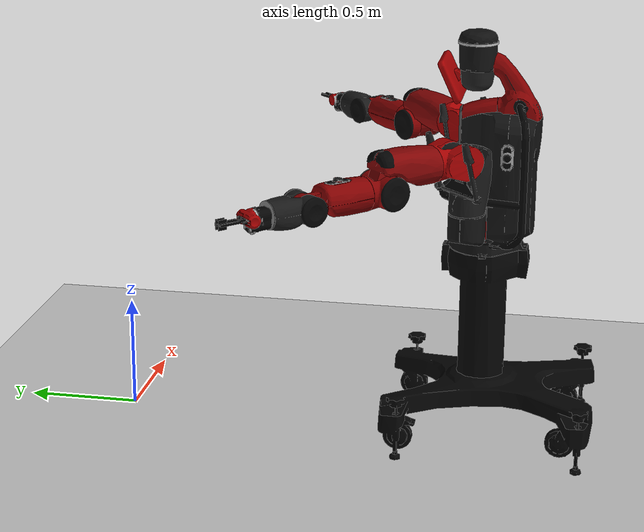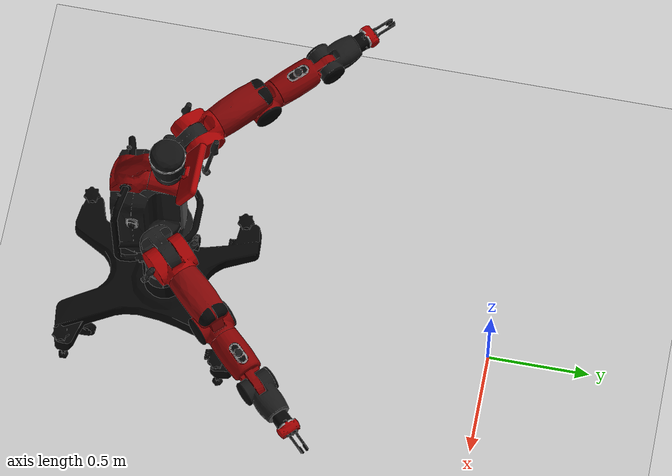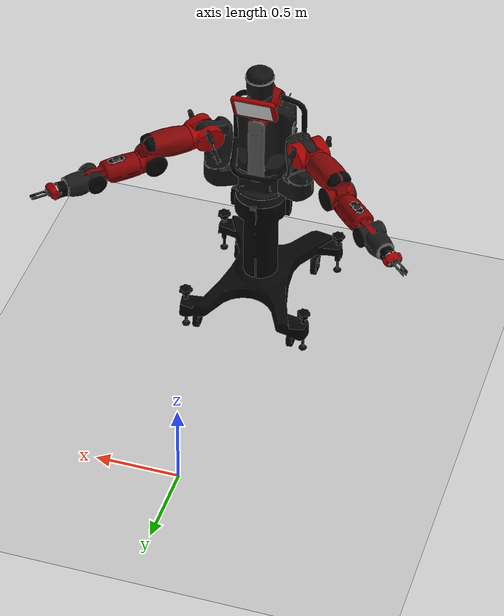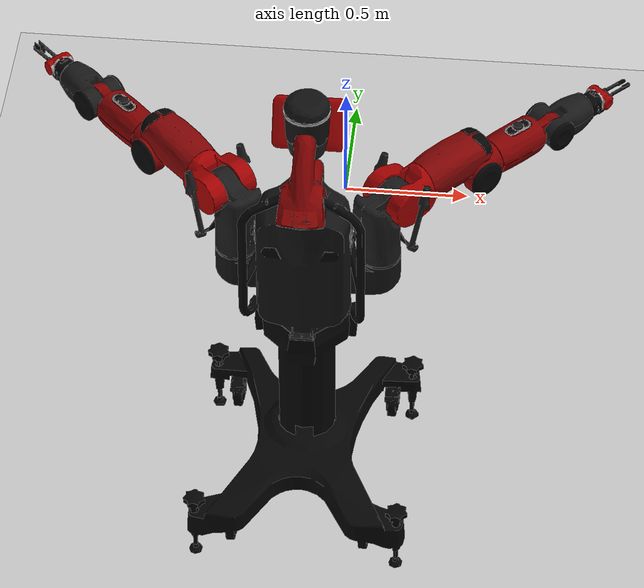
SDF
<sdf version="1.6">
 <world name="default">
  <model name="ground_plane">
   <pose>0.5 -0.5 0 0 -0 0</pose>
   <static>1</static>
   <link name="link">
    <collision name="collision">
     <geometry><plane><normal>0 0 1</normal><size>100 100</size></plane></geometry>
     <surface><friction><ode><mu>100</mu><mu2>50</mu2></ode></friction></surface>
    </collision>
    <visual name="visual">
     <cast_shadows>0</cast_shadows>
     <geometry><plane><normal>0 0 1</normal><size>100 100</size></plane></geometry>
     <material>
      <script><uri>file://media/materials/scripts/gazebo.material</uri><name>Gazebo/Grey</name></script>
     </material>
    </visual>
   </link>
  </model>
  <model name="baxter">
   <link name="base">
    <inertial>
     <pose>0 -0 3e-06 0 -0 0</pose>
     <mass>96.2011</mass>
     <inertia>
      <ixx>6.91297</ixx>
      <ixy>0.00068017</ixy>
      <ixz>0.64779</ixz>
      <iyy>7.74978</iyy>
      <iyz>0.00434511</iyz>
      <izz>5.76418</izz>
     </inertia>
    </inertial>
    <collision name="base_fixed_joint_lump__collision_head_link_1_collision">
     <pose>0.04 -0.04 0.75 0 -0 0</pose>
     <geometry><sphere><radius>0.22</radius></sphere></geometry>
    </collision>
    <collision name="base_fixed_joint_lump__collision_head_link_2_collision_1">
     <pose>0.04 0.04 0.75 0 -0 0</pose>
     <geometry><sphere><radius>0.22</radius></sphere></geometry>
    </collision>
    <collision name="base_fixed_joint_lump__torso_collision_2">
     <geometry>
      <mesh>
       <scale>1 1 1</scale>
       <uri>/home/robot/workspace/tsn_sfc/catkin_wb/src/rethink_robotics/baxter_common/baxter_description/meshes/torso/base_link_collision.DAE</uri>
      </mesh>
     </geometry>
    </collision>
    <collision name="base_fixed_joint_lump__pedestal_collision_3">
     <geometry>
      <mesh>
       <scale>1 1 1</scale>
       <uri>/home/robot/workspace/tsn_sfc/catkin_wb/src/rethink_robotics/baxter_common/baxter_description/meshes/base/pedestal_link_collision.DAE</uri>
      </mesh>
     </geometry>
    </collision>
    <collision name="base_fixed_joint_lump__sonar_ring_collision_4">
     <pose>0.0947 0 0.817 0 -0 0</pose>
     <geometry><sphere><radius>0.001</radius></sphere></geometry>
    </collision>
    <visual name="base_fixed_joint_lump__collision_head_link_1_visual">
     <pose>0.11 0 0.75 0 -0 0</pose>
     <geometry><sphere><radius>0.001</radius></sphere></geometry>
    </visual>
    <visual name="base_fixed_joint_lump__collision_head_link_2_visual_1">
     <pose>0.11 0 0.75 0 -0 0</pose>
     <geometry><sphere><radius>0.001</radius></sphere></geometry>
    </visual>
    <visual name="base_fixed_joint_lump__torso_visual_2">
     <geometry>
      <mesh>
       <scale>1 1 1</scale>
       <uri>/home/robot/workspace/tsn_sfc/catkin_wb/src/rethink_robotics/baxter_common/baxter_description/meshes/torso/base_link.DAE</uri>
      </mesh>
     </geometry>
     <material><script><uri>__default__</uri><name>__default__</name></script></material>
    </visual>
    <visual name="base_fixed_joint_lump__pedestal_visual_3">
     <geometry>
      <mesh>
       <scale>1 1 1</scale>
       <uri>/home/robot/workspace/tsn_sfc/catkin_wb/src/rethink_robotics/baxter_common/baxter_description/meshes/base/PEDESTAL.DAE</uri>
      </mesh>
     </geometry>
    </visual>
    <visual name="base_fixed_joint_lump__sonar_ring_visual_4">
     <pose>0.06 0 0.82653 0 -0 0</pose>
     <geometry><cylinder><length>0.01</length><radius>0.085</radius></cylinder></geometry>
     <material><script><uri>__default__</uri><name>__default__</name></script></material>
    </visual>
    <self_collide>1</self_collide>
    <sensor name="sonar" type="ray">
     <ray>
      <scan>
       <horizontal>
        <samples>12</samples>
        <resolution>1</resolution>
        <min_angle>-3.14</min_angle>
        <max_angle>3.14</max_angle>
       </horizontal>
       <vertical>
        <samples>2</samples>
        <resolution>1</resolution>
        <min_angle>-0.001</min_angle>
        <max_angle>0</max_angle>
       </vertical>
      </scan>
      <range><min>0.05</min><max>50</max></range>
     </ray>
     <plugin name="sonar_plugin" filename="libgazebo_ros_block_laser.so">
      <gaussianNoise>0.00</gaussianNoise>
      <alwaysOn>1</alwaysOn>
      <updateRate>100.0</updateRate>
      <topicName>/robot/sonar/head_sonar/state</topicName>
      <frameName>sonar_ring</frameName>
      <hokuyoMinIntensity>101</hokuyoMinIntensity>
      <robotNamespace>/</robotNamespace>
     </plugin>
     <always_on>1</always_on>
     <update_rate>100</update_rate>
     <pose>0.0947 0 0.817 0 -0 0</pose>
    </sensor>
   </link>
   <joint name="fixed" type="fixed"><child>base</child><parent>world</parent></joint>
   <link name="head">
    <pose>0.06 0 0.686 0 -0 0</pose>
    <inertial>
     <pose>0.054677 0 5e-06 0 -0 0</pose>
     <mass>0.988238</mass>
     <inertia>
      <ixx>0.00620194</ixx>
      <ixy>0.000202093</ixy>
      <ixz>0.000495898</ixz>
      <iyy>0.010977</iyy>
      <iyz>-0.00109806</iyz>
      <izz>0.00983914</izz>
     </inertia>
    </inertial>
    <collision name="head_collision"><geometry><sphere><radius>0.001</radius></sphere></geometry></collision>
    <collision name="head_fixed_joint_lump__screen_collision_1">
     <pose>0.1227 0 0 1.75057 0 1.5708</pose>
     <geometry><sphere><radius>0.001</radius></sphere></geometry>
    </collision>
    <visual name="head_visual">
     <pose>0 0 0.00953 0 -0 0</pose>
     <geometry>
      <mesh>
       <scale>1 1 1</scale>
       <uri>/home/robot/workspace/tsn_sfc/catkin_wb/src/rethink_robotics/baxter_common/baxter_description/meshes/head/H0.DAE</uri>
      </mesh>
     </geometry>
    </visual>
    <visual name="head_fixed_joint_lump__screen_visual_1">
     <pose>0.086855 0 -0.003172 1.5708 0.179774 0</pose>
     <geometry>
      <mesh>
       <scale>1 1 1</scale>
       <uri>/home/robot/workspace/tsn_sfc/catkin_wb/src/rethink_robotics/baxter_common/baxter_description/meshes/head/H1.DAE</uri>
      </mesh>
     </geometry>
    </visual>
    <visual name="head_fixed_joint_lump__display_visual_2">
     <pose>0.119839 0 -0.015742 2.01237 0 1.5708</pose>
     <geometry><box><size>0.218 0.16 0.001</size></box></geometry>
     <plugin name="screen_video_controller" filename="libgazebo_ros_video.so">
      <height>600</height>
      <width>1024</width>
      <topicName>/robot/xdisplay</topicName>
      <robotNamespace>/robot</robotNamespace>
     </plugin>
     <material><script><uri>__default__</uri><name>__default__</name></script></material>
    </visual>
    <sensor name="head_camera" type="camera">
     <update_rate>30</update_rate>
     <camera name="head_camera">
      <pose>0 0.21 0 -0 -0.8 -1.5708</pose>
      <horizontal_fov>1.39626</horizontal_fov>
      <image><width>800</width><height>800</height><format>R8G8B8</format></image>
      <clip><near>0.02</near><far>300</far></clip>
      <noise><type>gaussian</type><mean>0</mean><stddev>0.007</stddev></noise>
     </camera>
     <plugin name="camera_controller" filename="libgazebo_ros_camera.so">
      <alwaysOn>1</alwaysOn>
      <updateRate>0.0</updateRate>
      <cameraName>head_camera</cameraName>
      <imageTopicName>image</imageTopicName>
      <cameraInfoTopicName>camera_info</cameraInfoTopicName>
      <frameName>head_camera</frameName>
      <hackBaseline>0.07</hackBaseline>
      <distortionK1>0.0</distortionK1>
      <distortionK2>0.0</distortionK2>
      <distortionK3>0.0</distortionK3>
      <distortionT1>0.0</distortionT1>
      <distortionT2>0.0</distortionT2>
      <CxPrime>0</CxPrime>
      <Cx>0.0</Cx>
      <Cy>0.0</Cy>
      <focalLength>0.0</focalLength>
      <robotNamespace>/cameras</robotNamespace>
     </plugin>
     <pose>0.12839 0 0.06368 1.75057 0 1.5708</pose>
    </sensor>
   </link>
   <joint name="head_pan" type="revolute">
    <child>head</child>
    <parent>base</parent>
    <axis>
     <xyz>0 0 1</xyz>
     <limit><lower>-1.3963</lower><upper>1.3963</upper><effort>50000</effort><velocity>10000</velocity></limit>
     <dynamics>
      <damping>0.7</damping>
      <friction>0</friction>
      <spring_reference>0</spring_reference>
      <spring_stiffness>0</spring_stiffness>
     </dynamics>
     <use_parent_model_frame>1</use_parent_model_frame>
    </axis>
    <physics>
     <ode>
      <implicit_spring_damper>1</implicit_spring_damper>
      <cfm_damping>1</cfm_damping>
      <limit><cfm>0</cfm><erp>0.2</erp></limit>
     </ode>
    </physics>
   </joint>
   <link name="left_upper_shoulder">
    <pose>0.064027 0.259027 0.129626 0 -0 0.7854</pose>
    <inertial>
     <pose>0.01783 0.00086 0.19127 0 -0 0</pose>
     <mass>5.70044</mass>
     <inertia>
      <ixx>0.047091</ixx>
      <ixy>0.000127876</ixy>
      <ixz>0.0061487</ixz>
      <iyy>0.0376698</iyy>
      <iyz>0.000780869</iyz>
      <izz>0.0359599</izz>
     </inertia>
    </inertial>
    <collision name="left_upper_shoulder_collision">
     <pose>0 0 0.1361 0 -0 0</pose>
     <geometry><cylinder><length>0.2722</length><radius>0.06</radius></cylinder></geometry>
    </collision>
    <visual name="left_upper_shoulder_visual">
     <geometry>
      <mesh>
       <scale>1 1 1</scale>
       <uri>/home/robot/workspace/tsn_sfc/catkin_wb/src/rethink_robotics/baxter_common/baxter_description/meshes/upper_shoulder/S0.DAE</uri>
      </mesh>
     </geometry>
    </visual>
   </link>
   <joint name="left_s0" type="revolute">
    <child>left_upper_shoulder</child>
    <parent>base</parent>
    <axis>
     <xyz>0 0 1</xyz>
     <limit><lower>-1.70168</lower><upper>1.70168</upper><effort>50</effort><velocity>1.5</velocity></limit>
     <dynamics>
      <damping>0.7</damping>
      <friction>0</friction>
      <spring_reference>0</spring_reference>
      <spring_stiffness>0</spring_stiffness>
     </dynamics>
     <use_parent_model_frame>1</use_parent_model_frame>
    </axis>
    <physics>
     <ode>
      <implicit_spring_damper>1</implicit_spring_damper>
      <cfm_damping>1</cfm_damping>
      <limit><cfm>0</cfm><erp>0.2</erp></limit>
     </ode>
    </physics>
   </joint>
   <link name="left_lower_shoulder">
    <pose>0.112818 0.307818 0.399976 -1.5708 -0 0.7854</pose>
    <inertial>
     <pose>0.068451 0.00269 -0.00529 0 -0 0</pose>
     <mass>3.22708</mass>
     <inertia>
      <ixx>0.0117521</ixx>
      <ixy>-0.000300954</ixy>
      <ixz>0.00207674</ixz>
      <iyy>0.0278861</iyy>
      <iyz>-0.000188219</iyz>
      <izz>0.0207877</izz>
     </inertia>
    </inertial>
    <collision name="left_lower_shoulder_collision">
     <geometry><cylinder><length>0.12</length><radius>0.06</radius></cylinder></geometry>
    </collision>
    <collision name="left_lower_shoulder_fixed_joint_lump__left_upper_elbow_visual_collision_1">
     <pose>0.2435 -0 0 1.5708 -0 1.5708</pose>
     <geometry><cylinder><length>0.273</length><radius>0.06</radius></cylinder></geometry>
    </collision>
    <visual name="left_lower_shoulder_visual">
     <geometry>
      <mesh>
       <scale>1 1 1</scale>
       <uri>/home/robot/workspace/tsn_sfc/catkin_wb/src/rethink_robotics/baxter_common/baxter_description/meshes/lower_shoulder/S1.DAE</uri>
      </mesh>
     </geometry>
    </visual>
   </link>
   <joint name="left_s1" type="revolute">
    <child>left_lower_shoulder</child>
    <parent>left_upper_shoulder</parent>
    <axis>
     <xyz>-0.707108 0.707105 0</xyz>
     <limit><lower>-2.147</lower><upper>1.047</upper><effort>50</effort><velocity>1.5</velocity></limit>
     <dynamics>
      <damping>0.7</damping>
      <friction>0</friction>
      <spring_reference>0</spring_reference>
      <spring_stiffness>0</spring_stiffness>
     </dynamics>
     <use_parent_model_frame>1</use_parent_model_frame>
    </axis>
    <physics>
     <ode>
      <implicit_spring_damper>1</implicit_spring_damper>
      <cfm_damping>1</cfm_damping>
      <limit><cfm>0</cfm><erp>0.2</erp></limit>
     </ode>
    </physics>
   </joint>
   <link name="left_upper_elbow">
    <pose>0.184942 0.379943 0.399976 2.35619 1.57079 3.14159</pose>
    <inertial>
     <pose>-0.00276 0.00132 0.18086 0 -0 0</pose>
     <mass>4.31272</mass>
     <inertia>
      <ixx>0.0266173</ixx>
      <ixy>0.000292706</ixy>
      <ixz>0.0039219</ixz>
      <iyy>0.0284436</iyy>
      <iyz>0.00108389</iyz>
      <izz>0.0124801</izz>
     </inertia>
    </inertial>
    <collision name="left_upper_elbow_collision">
     <pose>0 0 -0.0535 0 -0 0</pose>
     <geometry><cylinder><length>0.107</length><radius>0.06</radius></cylinder></geometry>
    </collision>
    <visual name="left_upper_elbow_visual">
     <geometry>
      <mesh>
       <scale>1 1 1</scale>
       <uri>/home/robot/workspace/tsn_sfc/catkin_wb/src/rethink_robotics/baxter_common/baxter_description/meshes/upper_elbow/E0.DAE</uri>
      </mesh>
     </geometry>
    </visual>
   </link>
   <joint name="left_e0" type="revolute">
    <child>left_upper_elbow</child>
    <parent>left_lower_shoulder</parent>
    <axis>
     <xyz>0.707105 0.707108 0</xyz>
     <limit><lower>-3.05418</lower><upper>3.05418</upper><effort>50</effort><velocity>1.5</velocity></limit>
     <dynamics>
      <damping>0.7</damping>
      <friction>0</friction>
      <spring_reference>0</spring_reference>
      <spring_stiffness>0</spring_stiffness>
     </dynamics>
     <use_parent_model_frame>1</use_parent_model_frame>
    </axis>
    <physics>
     <ode>
      <implicit_spring_damper>1</implicit_spring_damper>
      <cfm_damping>1</cfm_damping>
      <limit><cfm>0</cfm><erp>0.2</erp></limit>
     </ode>
    </physics>
   </joint>
   <link name="left_lower_elbow">
    <pose>0.370501 0.565502 0.330976 -1.5708 -0 0.7854</pose>
    <inertial>
     <pose>0.026113 0.00159 -0.01117 0 -0 0</pose>
     <mass>2.07216</mass>
     <inertia>
      <ixx>0.00711585</ixx>
      <ixy>0.000360372</ixy>
      <ixz>0.00074588</ixz>
      <iyy>0.0131827</iyy>
      <iyz>-0.000196632</iyz>
      <izz>0.00926891</izz>
     </inertia>
    </inertial>
    <collision name="left_lower_elbow_collision">
     <geometry><cylinder><length>0.1</length><radius>0.06</radius></cylinder></geometry>
    </collision>
    <collision name="left_lower_elbow_fixed_joint_lump__left_upper_forearm_visual_collision_1">
     <pose>0.224 -0 0 1.5708 -0 1.5708</pose>
     <geometry><cylinder><length>0.272</length><radius>0.06</radius></cylinder></geometry>
    </collision>
    <visual name="left_lower_elbow_visual">
     <geometry>
      <mesh>
       <scale>1 1 1</scale>
       <uri>/home/robot/workspace/tsn_sfc/catkin_wb/src/rethink_robotics/baxter_common/baxter_description/meshes/lower_elbow/E1.DAE</uri>
      </mesh>
     </geometry>
    </visual>
   </link>
   <joint name="left_e1" type="revolute">
    <child>left_lower_elbow</child>
    <parent>left_upper_elbow</parent>
    <axis>
     <xyz>-0.707108 0.707105 0</xyz>
     <limit><lower>-0.05</lower><upper>2.618</upper><effort>50</effort><velocity>1.5</velocity></limit>
     <dynamics>
      <damping>0.7</damping>
      <friction>0</friction>
      <spring_reference>0</spring_reference>
      <spring_stiffness>0</spring_stiffness>
     </dynamics>
     <use_parent_model_frame>1</use_parent_model_frame>
    </axis>
    <physics>
     <ode>
      <implicit_spring_damper>1</implicit_spring_damper>
      <cfm_damping>1</cfm_damping>
      <limit><cfm>0</cfm><erp>0.2</erp></limit>
     </ode>
    </physics>
   </joint>
   <link name="left_upper_forearm">
    <pose>0.44375 0.638751 0.330976 2.35619 1.57079 3.14159</pose>
    <inertial>
     <pose>-0.001682 0.0046 0.139519 0 -0 0</pose>
     <mass>2.24675</mass>
     <inertia>
      <ixx>0.0166775</ixx>
      <ixy>0.000184012</ixy>
      <ixz>0.000186469</ixz>
      <iyy>0.0167549</iyy>
      <iyz>-0.000647332</iyz>
      <izz>0.00374662</izz>
     </inertia>
    </inertial>
    <collision name="left_upper_forearm_collision">
     <pose>0 0 -0.044 0 -0 0</pose>
     <geometry><cylinder><length>0.088</length><radius>0.06</radius></cylinder></geometry>
    </collision>
    <visual name="left_upper_forearm_visual">
     <geometry>
      <mesh>
       <scale>1 1 1</scale>
       <uri>/home/robot/workspace/tsn_sfc/catkin_wb/src/rethink_robotics/baxter_common/baxter_description/meshes/upper_forearm/W0.DAE</uri>
      </mesh>
     </geometry>
    </visual>
   </link>
   <joint name="left_w0" type="revolute">
    <child>left_upper_forearm</child>
    <parent>left_lower_elbow</parent>
    <axis>
     <xyz>0.707105 0.707108 0</xyz>
     <limit><lower>-3.059</lower><upper>3.059</upper><effort>15</effort><velocity>4</velocity></limit>
     <dynamics>
      <damping>0.7</damping>
      <friction>0</friction>
      <spring_reference>0</spring_reference>
      <spring_stiffness>0</spring_stiffness>
     </dynamics>
     <use_parent_model_frame>1</use_parent_model_frame>
    </axis>
    <physics>
     <ode>
      <implicit_spring_damper>1</implicit_spring_damper>
      <cfm_damping>1</cfm_damping>
      <limit><cfm>0</cfm><erp>0.2</erp></limit>
     </ode>
    </physics>
   </joint>
   <link name="left_lower_forearm">
    <pose>0.635163 0.830166 0.320976 -1.5708 -0 0.7854</pose>
    <inertial>
     <pose>0.06041 0.00697 0.006 0 -0 0</pose>
     <mass>1.60979</mass>
     <inertia>
      <ixx>0.00387607</ixx>
      <ixy>-0.000443848</ixy>
      <ixz>-0.00021115</ixz>
      <iyy>0.00700538</iyy>
      <iyz>0.000153481</iyz>
      <izz>0.00552755</izz>
     </inertia>
    </inertial>
    <collision name="left_lower_forearm_collision">
     <geometry><cylinder><length>0.1</length><radius>0.06</radius></cylinder></geometry>
    </collision>
    <visual name="left_lower_forearm_visual">
     <geometry>
      <mesh>
       <scale>1 1 1</scale>
       <uri>/home/robot/workspace/tsn_sfc/catkin_wb/src/rethink_robotics/baxter_common/baxter_description/meshes/lower_forearm/W1.DAE</uri>
      </mesh>
     </geometry>
    </visual>
   </link>
   <joint name="left_w1" type="revolute">
    <child>left_lower_forearm</child>
    <parent>left_upper_forearm</parent>
    <axis>
     <xyz>-0.707108 0.707105 0</xyz>
     <limit><lower>-1.5708</lower><upper>2.094</upper><effort>15</effort><velocity>4</velocity></limit>
     <dynamics>
      <damping>0.7</damping>
      <friction>0</friction>
      <spring_reference>0</spring_reference>
      <spring_stiffness>0</spring_stiffness>
     </dynamics>
     <use_parent_model_frame>1</use_parent_model_frame>
    </axis>
    <physics>
     <ode>
      <implicit_spring_damper>1</implicit_spring_damper>
      <cfm_damping>1</cfm_damping>
      <limit><cfm>0</cfm><erp>0.2</erp></limit>
     </ode>
    </physics>
   </joint>
   <link name="left_wrist">
    <pose>0.71717 0.912173 0.320976 2.35619 1.57079 3.14159</pose>
    <inertial>
     <pose>0.003318 0.000616 0.079435 0 -0 0</pose>
     <mass>0.84268</mass>
     <inertia>
      <ixx>0.00285059</ixx>
      <ixy>7.17373e-06</ixy>
      <ixz>2.52032e-05</ixz>
      <iyy>0.00291735</iyy>
      <iyz>2.17353e-05</iyz>
      <izz>0.000560608</izz>
     </inertia>
    </inertial>
    <collision name="left_wrist_collision">
     <geometry><cylinder><length>0.165</length><radius>0.06</radius></cylinder></geometry>
    </collision>
    <collision name="left_wrist_fixed_joint_lump__left_hand_collision_1">
     <pose>0 0 0.09035 0 -0 0</pose>
     <geometry><cylinder><length>0.0464</length><radius>0.04</radius></cylinder></geometry>
    </collision>
    <collision name="left_wrist_fixed_joint_lump__left_gripper_base_collision_2">
     <pose>0 0 0.13855 1.5708 -0 3.14159</pose>
     <geometry><cylinder><length>0.1</length><radius>0.029</radius></cylinder></geometry>
    </collision>
    <visual name="left_wrist_visual">
     <geometry>
      <mesh>
       <scale>1 1 1</scale>
       <uri>/home/robot/workspace/tsn_sfc/catkin_wb/src/rethink_robotics/baxter_common/baxter_description/meshes/wrist/W2.DAE</uri>
      </mesh>
     </geometry>
    </visual>
    <visual name="left_wrist_fixed_joint_lump__left_gripper_base_visual_1">
     <pose>0 0 0.13855 1.5708 -0 3.14159</pose>
     <geometry>
      <mesh>
       <scale>1 1 1</scale>
       <uri>/home/robot/workspace/tsn_sfc/catkin_wb/src/rethink_robotics/baxter_common/rethink_ee_description/meshes/electric_gripper/electric_gripper_base.DAE</uri>
      </mesh>
     </geometry>
    </visual>
    <visual name="left_wrist_fixed_joint_lump__left_hand_accelerometer_visual_2">
     <pose>0.00198 0.000133 0.09895 0 -0 0</pose>
     <geometry><box><size>0.01 0.01 0.01</size></box></geometry>
    </visual>
    <visual name="left_wrist_fixed_joint_lump__left_hand_camera_visual_3">
     <pose>0.03825 0.012 0.128905 0 0 -1.5708</pose>
     <geometry><cylinder><length>0.01</length><radius>0.02</radius></cylinder></geometry>
     <material><script><uri>__default__</uri><name>__default__</name></script></material>
    </visual>
    <visual name="left_wrist_fixed_joint_lump__left_hand_range_visual_4">
     <pose>0.032 -0.020245 0.14235 3.14159 -1.57079 1.57079</pose>
     <geometry><box><size>0.005 0.02 0.005</size></box></geometry>
     <material><script><uri>__default__</uri><name>__default__</name></script></material>
    </visual>
    <sensor name="left_hand_camera" type="camera">
     <update_rate>30</update_rate>
     <camera name="left_hand_camera">
      <pose>0 0 0 -1.57079 -1.57079 3.14159</pose>
      <horizontal_fov>1.39626</horizontal_fov>
      <image><width>800</width><height>800</height><format>R8G8B8</format></image>
      <clip><near>0.02</near><far>300</far></clip>
      <noise><type>gaussian</type><mean>0</mean><stddev>0.007</stddev></noise>
     </camera>
     <plugin name="camera_controller" filename="libgazebo_ros_camera.so">
      <alwaysOn>1</alwaysOn>
      <updateRate>0.0</updateRate>
      <cameraName>left_hand_camera</cameraName>
      <imageTopicName>image</imageTopicName>
      <cameraInfoTopicName>camera_info</cameraInfoTopicName>
      <frameName>left_hand_camera</frameName>
      <hackBaseline>0.07</hackBaseline>
      <distortionK1>0.0</distortionK1>
      <distortionK2>0.0</distortionK2>
      <distortionK3>0.0</distortionK3>
      <distortionT1>0.0</distortionT1>
      <distortionT2>0.0</distortionT2>
      <CxPrime>0</CxPrime>
      <Cx>0.0</Cx>
      <Cy>0.0</Cy>
      <focalLength>0.0</focalLength>
      <robotNamespace>/cameras</robotNamespace>
     </plugin>
     <pose>0.03825 0.012 0.128905 0 0 -1.5708</pose>
    </sensor>
    <gravity>0</gravity>
    <sensor name="ir_left" type="ray">
     <ray>
      <scan>
       <horizontal>
        <samples>1</samples>
        <resolution>1</resolution>
        <min_angle>-0.5</min_angle>
        <max_angle>0.5</max_angle>
       </horizontal>
       <vertical><samples>1</samples><min_angle>0</min_angle><max_angle>0</max_angle></vertical>
      </scan>
      <range><min>0.004</min><max>0.4</max></range>
     </ray>
     <plugin name="plugin_4" filename="libgazebo_ros_laser.so">
      <gaussianNoise>0.005</gaussianNoise>
      <alwaysOn>1</alwaysOn>
      <updateRate>100</updateRate>
      <topicName>/sim/laserscan/left_hand_range/state</topicName>
      <frameName>left_hand_range</frameName>
      <robotNamespace>/</robotNamespace>
     </plugin>
     <always_on>1</always_on>
     <update_rate>100</update_rate>
     <pose>0.032 -0.020245 0.14235 3.14159 -1.57079 1.57079</pose>
    </sensor>
   </link>
   <joint name="left_w2" type="revolute">
    <child>left_wrist</child>
    <parent>left_lower_forearm</parent>
    <axis>
     <xyz>0.707105 0.707108 0</xyz>
     <limit><lower>-3.059</lower><upper>3.059</upper><effort>15</effort><velocity>4</velocity></limit>
     <dynamics>
      <damping>0.7</damping>
      <friction>0</friction>
      <spring_reference>0</spring_reference>
      <spring_stiffness>0</spring_stiffness>
     </dynamics>
     <use_parent_model_frame>1</use_parent_model_frame>
    </axis>
    <physics>
     <ode>
      <implicit_spring_damper>1</implicit_spring_damper>
      <cfm_damping>1</cfm_damping>
      <limit><cfm>0</cfm><erp>0.2</erp></limit>
     </ode>
    </physics>
   </joint>
   <link name="l_gripper_l_finger">
    <pose>0.830342 1.02322 0.320976 2.35619 1.57079 3.14159</pose>
    <inertial>
     <pose>0 0.00575 0.037567 0 -0 3.14159</pose>
     <mass>0.03</mass>
     <inertia>
      <ixx>0.0200867</ixx>
      <ixy>4.0989e-19</ixy>
      <ixz>-2.67795e-18</ixz>
      <iyy>0.0200847</iyy>
      <iyz>1.29605e-05</iyz>
      <izz>0.020002</izz>
     </inertia>
    </inertial>
    <collision name="l_gripper_l_finger_collision">
     <pose>0 0.01725 0.0615 0 -0 3.14159</pose>
     <geometry><box><size>0.01 0.0135 0.1127</size></box></geometry>
     <surface>
      <contact><ode><kp>100000</kp><kd>1</kd></ode></contact>
      <friction><ode><mu>1000</mu><mu2>1000</mu2><fdir1>0 0 1</fdir1></ode></friction>
     </surface>
    </collision>
    <collision name="l_gripper_l_finger_collision_1">
     <pose>-0.005 -0.003 0.0083 0 -0 3.14159</pose>
     <geometry><box><size>0.01 0.05 0.017</size></box></geometry>
     <surface>
      <contact><ode><kp>100000</kp><kd>1</kd></ode></contact>
      <friction><ode><mu>1000</mu><mu2>1000</mu2><fdir1>0 0 1</fdir1></ode></friction>
     </surface>
    </collision>
    <collision name="l_gripper_l_finger_tip_collision_2">
     <pose>0 0.01275 0.0977 0 -0 -3.14159</pose>
     <geometry><box><size>0.042 0.0065 0.037</size></box></geometry>
     <surface>
      <contact><ode><kp>100000</kp><kd>1</kd></ode></contact>
      <friction><ode><mu>1000</mu><mu2>1000</mu2><fdir1>0 0 1</fdir1></ode></friction>
     </surface>
    </collision>
    <visual name="l_gripper_l_finger_visual">
     <pose>0 0 0 0 -0 3.14159</pose>
     <geometry>
      <mesh>
       <scale>1 1 1</scale>
       <uri>/home/robot/workspace/tsn_sfc/catkin_wb/src/rethink_robotics/baxter_common/rethink_ee_description/meshes/electric_gripper/fingers/extended_narrow.DAE</uri>
      </mesh>
     </geometry>
     <material><script><uri>__default__</uri><name>__default__</name></script></material>
    </visual>
    <visual name="l_gripper_l_finger_tip_visual_1">
     <pose>0 0.01725 0.1127 0 -0 -3.14159</pose>
     <geometry>
      <mesh>
       <scale>1 1 1</scale>
       <uri>/home/robot/workspace/tsn_sfc/catkin_wb/src/rethink_robotics/baxter_common/rethink_ee_description/meshes/electric_gripper/fingers/paddle_tip.DAE</uri>
      </mesh>
     </geometry>
     <material><script><uri>__default__</uri><name>__default__</name></script></material>
    </visual>
   </link>
   <joint name="l_gripper_l_finger_joint" type="prismatic">
    <child>l_gripper_l_finger</child>
    <parent>left_wrist</parent>
    <axis>
     <xyz>-0.707108 0.707105 0</xyz>
     <limit><lower>0</lower><upper>0.020833</upper><effort>20</effort><velocity>5</velocity></limit>
     <dynamics>
      <damping>0.7</damping>
      <friction>0</friction>
      <spring_reference>0</spring_reference>
      <spring_stiffness>0</spring_stiffness>
     </dynamics>
     <use_parent_model_frame>1</use_parent_model_frame>
    </axis>
    <physics>
     <ode>
      <implicit_spring_damper>1</implicit_spring_damper>
      <cfm_damping>1</cfm_damping>
      <limit><cfm>0</cfm><erp>0.2</erp></limit>
     </ode>
    </physics>
   </joint>
   <link name="l_gripper_r_finger">
    <pose>0.828221 1.02535 0.320976 2.35619 1.57079 3.14159</pose>
    <inertial>
     <pose>0 -0.00575 0.037567 0 -0 0</pose>
     <mass>0.03</mass>
     <inertia>
      <ixx>0.0200867</ixx>
      <ixy>0</ixy>
      <ixz>0</ixz>
      <iyy>0.0200847</iyy>
      <iyz>1.29605e-05</iyz>
      <izz>0.020002</izz>
     </inertia>
    </inertial>
    <collision name="l_gripper_r_finger_collision">
     <pose>0 -0.01725 0.0615 0 -0 0</pose>
     <geometry><box><size>0.01 0.0135 0.1127</size></box></geometry>
     <surface>
      <contact><ode><kp>100000</kp><kd>1</kd></ode></contact>
      <friction><ode><mu>1000</mu><mu2>1000</mu2><fdir1>0 0 1</fdir1></ode></friction>
     </surface>
    </collision>
    <collision name="l_gripper_r_finger_collision_1">
     <pose>0.005 0.003 0.0083 0 -0 0</pose>
     <geometry><box><size>0.01 0.05 0.017</size></box></geometry>
     <surface>
      <contact><ode><kp>100000</kp><kd>1</kd></ode></contact>
      <friction><ode><mu>1000</mu><mu2>1000</mu2><fdir1>0 0 1</fdir1></ode></friction>
     </surface>
    </collision>
    <collision name="l_gripper_r_finger_tip_collision_2">
     <pose>0 -0.01275 0.0977 0 -0 0</pose>
     <geometry><box><size>0.042 0.0065 0.037</size></box></geometry>
     <surface>
      <contact><ode><kp>100000</kp><kd>1</kd></ode></contact>
      <friction><ode><mu>1000</mu><mu2>1000</mu2><fdir1>0 0 1</fdir1></ode></friction>
     </surface>
    </collision>
    <visual name="l_gripper_r_finger_visual">
     <geometry>
      <mesh>
       <scale>1 1 1</scale>
       <uri>/home/robot/workspace/tsn_sfc/catkin_wb/src/rethink_robotics/baxter_common/rethink_ee_description/meshes/electric_gripper/fingers/extended_narrow.DAE</uri>
      </mesh>
     </geometry>
     <material><script><uri>__default__</uri><name>__default__</name></script></material>
    </visual>
    <visual name="l_gripper_r_finger_tip_visual_1">
     <pose>0 -0.01725 0.1127 0 -0 0</pose>
     <geometry>
      <mesh>
       <scale>1 1 1</scale>
       <uri>/home/robot/workspace/tsn_sfc/catkin_wb/src/rethink_robotics/baxter_common/rethink_ee_description/meshes/electric_gripper/fingers/paddle_tip.DAE</uri>
      </mesh>
     </geometry>
     <material><script><uri>__default__</uri><name>__default__</name></script></material>
    </visual>
   </link>
   <joint name="l_gripper_r_finger_joint" type="prismatic">
    <child>l_gripper_r_finger</child>
    <parent>left_wrist</parent>
    <axis>
     <xyz>-0.707108 0.707105 0</xyz>
     <limit><lower>-0.020833</lower><upper>0</upper><effort>20</effort><velocity>5</velocity></limit>
     <dynamics>
      <damping>0.7</damping>
      <friction>0</friction>
      <spring_reference>0</spring_reference>
      <spring_stiffness>0</spring_stiffness>
     </dynamics>
     <use_parent_model_frame>1</use_parent_model_frame>
    </axis>
    <physics>
     <ode>
      <implicit_spring_damper>1</implicit_spring_damper>
      <cfm_damping>1</cfm_damping>
      <limit><cfm>0</cfm><erp>0.2</erp></limit>
     </ode>
    </physics>
   </joint>
   <link name="right_upper_shoulder">
    <pose>0.064027 -0.259027 0.129626 0 0 -0.7854</pose>
    <inertial>
     <pose>0.01783 0.00086 0.19127 0 -0 0</pose>
     <mass>5.70044</mass>
     <inertia>
      <ixx>0.047091</ixx>
      <ixy>0.000127876</ixy>
      <ixz>0.0061487</ixz>
      <iyy>0.0376698</iyy>
      <iyz>0.000780869</iyz>
      <izz>0.0359599</izz>
     </inertia>
    </inertial>
    <collision name="right_upper_shoulder_collision">
     <pose>0 0 0.1361 0 -0 0</pose>
     <geometry><cylinder><length>0.2722</length><radius>0.06</radius></cylinder></geometry>
    </collision>
    <visual name="right_upper_shoulder_visual">
     <geometry>
      <mesh>
       <scale>1 1 1</scale>
       <uri>/home/robot/workspace/tsn_sfc/catkin_wb/src/rethink_robotics/baxter_common/baxter_description/meshes/upper_shoulder/S0.DAE</uri>
      </mesh>
     </geometry>
    </visual>
   </link>
   <joint name="right_s0" type="revolute">
    <child>right_upper_shoulder</child>
    <parent>base</parent>
    <axis>
     <xyz>0 0 1</xyz>
     <limit><lower>-1.70168</lower><upper>1.70168</upper><effort>50</effort><velocity>1.5</velocity></limit>
     <dynamics>
      <damping>0.7</damping>
      <friction>0</friction>
      <spring_reference>0</spring_reference>
      <spring_stiffness>0</spring_stiffness>
     </dynamics>
     <use_parent_model_frame>1</use_parent_model_frame>
    </axis>
    <physics>
     <ode>
      <implicit_spring_damper>1</implicit_spring_damper>
      <cfm_damping>1</cfm_damping>
      <limit><cfm>0</cfm><erp>0.2</erp></limit>
     </ode>
    </physics>
   </joint>
   <link name="right_lower_shoulder">
    <pose>0.112818 -0.307818 0.399976 -1.5708 -0 -0.7854</pose>
    <inertial>
     <pose>0.068451 0.00269 -0.00529 0 -0 0</pose>
     <mass>3.22708</mass>
     <inertia>
      <ixx>0.0117521</ixx>
      <ixy>-0.000300954</ixy>
      <ixz>0.00207674</ixz>
      <iyy>0.0278861</iyy>
      <iyz>-0.000188219</iyz>
      <izz>0.0207877</izz>
     </inertia>
    </inertial>
    <collision name="right_lower_shoulder_collision">
     <geometry><cylinder><length>0.12</length><radius>0.06</radius></cylinder></geometry>
    </collision>
    <collision name="right_lower_shoulder_fixed_joint_lump__right_upper_elbow_visual_collision_1">
     <pose>0.2435 -0 0 1.5708 -0 1.5708</pose>
     <geometry><cylinder><length>0.273</length><radius>0.06</radius></cylinder></geometry>
    </collision>
    <visual name="right_lower_shoulder_visual">
     <geometry>
      <mesh>
       <scale>1 1 1</scale>
       <uri>/home/robot/workspace/tsn_sfc/catkin_wb/src/rethink_robotics/baxter_common/baxter_description/meshes/lower_shoulder/S1.DAE</uri>
      </mesh>
     </geometry>
    </visual>
   </link>
   <joint name="right_s1" type="revolute">
    <child>right_lower_shoulder</child>
    <parent>right_upper_shoulder</parent>
    <axis>
     <xyz>0.707108 0.707105 0</xyz>
     <limit><lower>-2.147</lower><upper>1.047</upper><effort>50</effort><velocity>1.5</velocity></limit>
     <dynamics>
      <damping>0.7</damping>
      <friction>0</friction>
      <spring_reference>0</spring_reference>
      <spring_stiffness>0</spring_stiffness>
     </dynamics>
     <use_parent_model_frame>1</use_parent_model_frame>
    </axis>
    <physics>
     <ode>
      <implicit_spring_damper>1</implicit_spring_damper>
      <cfm_damping>1</cfm_damping>
      <limit><cfm>0</cfm><erp>0.2</erp></limit>
     </ode>
    </physics>
   </joint>
   <link name="right_upper_elbow">
    <pose>0.184942 -0.379943 0.399976 -2.35619 1.57079 3.14159</pose>
    <inertial>
     <pose>-0.00276 0.00132 0.18086 0 -0 0</pose>
     <mass>4.31272</mass>
     <inertia>
      <ixx>0.0266173</ixx>
      <ixy>0.000292706</ixy>
      <ixz>0.0039219</ixz>
      <iyy>0.0284436</iyy>
      <iyz>0.00108389</iyz>
      <izz>0.0124801</izz>
     </inertia>
    </inertial>
    <collision name="right_upper_elbow_collision">
     <pose>0 0 -0.0535 0 -0 0</pose>
     <geometry><cylinder><length>0.107</length><radius>0.06</radius></cylinder></geometry>
    </collision>
    <visual name="right_upper_elbow_visual">
     <geometry>
      <mesh>
       <scale>1 1 1</scale>
       <uri>/home/robot/workspace/tsn_sfc/catkin_wb/src/rethink_robotics/baxter_common/baxter_description/meshes/upper_elbow/E0.DAE</uri>
      </mesh>
     </geometry>
    </visual>
   </link>
   <joint name="right_e0" type="revolute">
    <child>right_upper_elbow</child>
    <parent>right_lower_shoulder</parent>
    <axis>
     <xyz>0.707105 -0.707108 0</xyz>
     <limit><lower>-3.05418</lower><upper>3.05418</upper><effort>50</effort><velocity>1.5</velocity></limit>
     <dynamics>
      <damping>0.7</damping>
      <friction>0</friction>
      <spring_reference>0</spring_reference>
      <spring_stiffness>0</spring_stiffness>
     </dynamics>
     <use_parent_model_frame>1</use_parent_model_frame>
    </axis>
    <physics>
     <ode>
      <implicit_spring_damper>1</implicit_spring_damper>
      <cfm_damping>1</cfm_damping>
      <limit><cfm>0</cfm><erp>0.2</erp></limit>
     </ode>
    </physics>
   </joint>
   <link name="right_lower_elbow">
    <pose>0.370501 -0.565502 0.330976 -1.5708 -0 -0.7854</pose>
    <inertial>
     <pose>0.026113 0.00159 -0.01117 0 -0 0</pose>
     <mass>2.07216</mass>
     <inertia>
      <ixx>0.00711585</ixx>
      <ixy>0.000360372</ixy>
      <ixz>0.00074588</ixz>
      <iyy>0.0131827</iyy>
      <iyz>-0.000196632</iyz>
      <izz>0.00926891</izz>
     </inertia>
    </inertial>
    <collision name="right_lower_elbow_collision">
     <geometry><cylinder><length>0.1</length><radius>0.06</radius></cylinder></geometry>
    </collision>
    <collision name="right_lower_elbow_fixed_joint_lump__right_upper_forearm_visual_collision_1">
     <pose>0.224 -0 0 1.5708 -0 1.5708</pose>
     <geometry><cylinder><length>0.272</length><radius>0.06</radius></cylinder></geometry>
    </collision>
    <visual name="right_lower_elbow_visual">
     <geometry>
      <mesh>
       <scale>1 1 1</scale>
       <uri>/home/robot/workspace/tsn_sfc/catkin_wb/src/rethink_robotics/baxter_common/baxter_description/meshes/lower_elbow/E1.DAE</uri>
      </mesh>
     </geometry>
    </visual>
   </link>
   <joint name="right_e1" type="revolute">
    <child>right_lower_elbow</child>
    <parent>right_upper_elbow</parent>
    <axis>
     <xyz>0.707108 0.707105 0</xyz>
     <limit><lower>-0.05</lower><upper>2.618</upper><effort>50</effort><velocity>1.5</velocity></limit>
     <dynamics>
      <damping>0.7</damping>
      <friction>0</friction>
      <spring_reference>0</spring_reference>
      <spring_stiffness>0</spring_stiffness>
     </dynamics>
     <use_parent_model_frame>1</use_parent_model_frame>
    </axis>
    <physics>
     <ode>
      <implicit_spring_damper>1</implicit_spring_damper>
      <cfm_damping>1</cfm_damping>
      <limit><cfm>0</cfm><erp>0.2</erp></limit>
     </ode>
    </physics>
   </joint>
   <link name="right_upper_forearm">
    <pose>0.44375 -0.638751 0.330976 -2.35619 1.57079 3.14159</pose>
    <inertial>
     <pose>-0.001682 0.0046 0.139519 0 -0 0</pose>
     <mass>2.24675</mass>
     <inertia>
      <ixx>0.0166775</ixx>
      <ixy>0.000184012</ixy>
      <ixz>0.000186469</ixz>
      <iyy>0.0167549</iyy>
      <iyz>-0.000647332</iyz>
      <izz>0.00374662</izz>
     </inertia>
    </inertial>
    <collision name="right_upper_forearm_collision">
     <pose>0 0 -0.044 0 -0 0</pose>
     <geometry><cylinder><length>0.088</length><radius>0.06</radius></cylinder></geometry>
    </collision>
    <visual name="right_upper_forearm_visual">
     <geometry>
      <mesh>
       <scale>1 1 1</scale>
       <uri>/home/robot/workspace/tsn_sfc/catkin_wb/src/rethink_robotics/baxter_common/baxter_description/meshes/upper_forearm/W0.DAE</uri>
      </mesh>
     </geometry>
    </visual>
   </link>
   <joint name="right_w0" type="revolute">
    <child>right_upper_forearm</child>
    <parent>right_lower_elbow</parent>
    <axis>
     <xyz>0.707105 -0.707108 0</xyz>
     <limit><lower>-3.059</lower><upper>3.059</upper><effort>15</effort><velocity>4</velocity></limit>
     <dynamics>
      <damping>0.7</damping>
      <friction>0</friction>
      <spring_reference>0</spring_reference>
      <spring_stiffness>0</spring_stiffness>
     </dynamics>
     <use_parent_model_frame>1</use_parent_model_frame>
    </axis>
    <physics>
     <ode>
      <implicit_spring_damper>1</implicit_spring_damper>
      <cfm_damping>1</cfm_damping>
      <limit><cfm>0</cfm><erp>0.2</erp></limit>
     </ode>
    </physics>
   </joint>
   <link name="right_lower_forearm">
    <pose>0.635163 -0.830166 0.320976 -1.5708 -0 -0.7854</pose>
    <inertial>
     <pose>0.06041 0.00697 0.006 0 -0 0</pose>
     <mass>1.60979</mass>
     <inertia>
      <ixx>0.00387607</ixx>
      <ixy>-0.000443848</ixy>
      <ixz>-0.00021115</ixz>
      <iyy>0.00700538</iyy>
      <iyz>0.000153481</iyz>
      <izz>0.00552755</izz>
     </inertia>
    </inertial>
    <collision name="right_lower_forearm_collision">
     <geometry><cylinder><length>0.1</length><radius>0.06</radius></cylinder></geometry>
    </collision>
    <visual name="right_lower_forearm_visual">
     <geometry>
      <mesh>
       <scale>1 1 1</scale>
       <uri>/home/robot/workspace/tsn_sfc/catkin_wb/src/rethink_robotics/baxter_common/baxter_description/meshes/lower_forearm/W1.DAE</uri>
      </mesh>
     </geometry>
    </visual>
   </link>
   <joint name="right_w1" type="revolute">
    <child>right_lower_forearm</child>
    <parent>right_upper_forearm</parent>
    <axis>
     <xyz>0.707108 0.707105 0</xyz>
     <limit><lower>-1.5708</lower><upper>2.094</upper><effort>15</effort><velocity>4</velocity></limit>
     <dynamics>
      <damping>0.7</damping>
      <friction>0</friction>
      <spring_reference>0</spring_reference>
      <spring_stiffness>0</spring_stiffness>
     </dynamics>
     <use_parent_model_frame>1</use_parent_model_frame>
    </axis>
    <physics>
     <ode>
      <implicit_spring_damper>1</implicit_spring_damper>
      <cfm_damping>1</cfm_damping>
      <limit><cfm>0</cfm><erp>0.2</erp></limit>
     </ode>
    </physics>
   </joint>
   <link name="right_wrist">
    <pose>0.71717 -0.912173 0.320976 -2.35619 1.57079 3.14159</pose>
    <inertial>
     <pose>0.003318 0.000616 0.079435 0 -0 0</pose>
     <mass>0.84268</mass>
     <inertia>
      <ixx>0.00285059</ixx>
      <ixy>7.17373e-06</ixy>
      <ixz>2.52032e-05</ixz>
      <iyy>0.00291735</iyy>
      <iyz>2.17353e-05</iyz>
      <izz>0.000560608</izz>
     </inertia>
    </inertial>
    <collision name="right_wrist_collision">
     <geometry><cylinder><length>0.165</length><radius>0.06</radius></cylinder></geometry>
    </collision>
    <collision name="right_wrist_fixed_joint_lump__right_hand_collision_1">
     <pose>0 0 0.09035 0 -0 0</pose>
     <geometry><cylinder><length>0.0464</length><radius>0.04</radius></cylinder></geometry>
    </collision>
    <collision name="right_wrist_fixed_joint_lump__right_gripper_base_collision_2">
     <pose>0 0 0.13855 1.5708 -0 3.14159</pose>
     <geometry><cylinder><length>0.1</length><radius>0.029</radius></cylinder></geometry>
    </collision>
    <visual name="right_wrist_visual">
     <geometry>
      <mesh>
       <scale>1 1 1</scale>
       <uri>/home/robot/workspace/tsn_sfc/catkin_wb/src/rethink_robotics/baxter_common/baxter_description/meshes/wrist/W2.DAE</uri>
      </mesh>
     </geometry>
    </visual>
    <visual name="right_wrist_fixed_joint_lump__right_gripper_base_visual_1">
     <pose>0 0 0.13855 1.5708 -0 3.14159</pose>
     <geometry>
      <mesh>
       <scale>1 1 1</scale>
       <uri>/home/robot/workspace/tsn_sfc/catkin_wb/src/rethink_robotics/baxter_common/rethink_ee_description/meshes/electric_gripper/electric_gripper_base.DAE</uri>
      </mesh>
     </geometry>
    </visual>
    <visual name="right_wrist_fixed_joint_lump__right_hand_accelerometer_visual_2">
     <pose>0.00198 0.000133 0.09895 0 -0 0</pose>
     <geometry><box><size>0.01 0.01 0.01</size></box></geometry>
    </visual>
    <visual name="right_wrist_fixed_joint_lump__right_hand_camera_visual_3">
     <pose>0.03825 0.012 0.128905 0 0 -1.5708</pose>
     <geometry><cylinder><length>0.01</length><radius>0.02</radius></cylinder></geometry>
     <material><script><uri>__default__</uri><name>__default__</name></script></material>
    </visual>
    <visual name="right_wrist_fixed_joint_lump__right_hand_range_visual_4">
     <pose>0.032 -0.020245 0.14235 3.14159 -1.57079 1.57079</pose>
     <geometry><box><size>0.005 0.02 0.005</size></box></geometry>
     <material><script><uri>__default__</uri><name>__default__</name></script></material>
    </visual>
    <sensor name="right_hand_camera" type="camera">
     <update_rate>30</update_rate>
     <camera name="right_hand_camera">
      <pose>0 0 0 -1.57079 -1.57079 3.14159</pose>
      <horizontal_fov>1.39626</horizontal_fov>
      <image><width>800</width><height>800</height><format>R8G8B8</format></image>
      <clip><near>0.02</near><far>300</far></clip>
      <noise><type>gaussian</type><mean>0</mean><stddev>0.007</stddev></noise>
     </camera>
     <plugin name="camera_controller" filename="libgazebo_ros_camera.so">
      <alwaysOn>1</alwaysOn>
      <updateRate>0.0</updateRate>
      <cameraName>right_hand_camera</cameraName>
      <imageTopicName>image</imageTopicName>
      <cameraInfoTopicName>camera_info</cameraInfoTopicName>
      <frameName>right_hand_camera</frameName>
      <hackBaseline>0.07</hackBaseline>
      <distortionK1>0.0</distortionK1>
      <distortionK2>0.0</distortionK2>
      <distortionK3>0.0</distortionK3>
      <distortionT1>0.0</distortionT1>
      <distortionT2>0.0</distortionT2>
      <CxPrime>0</CxPrime>
      <Cx>0.0</Cx>
      <Cy>0.0</Cy>
      <focalLength>0.0</focalLength>
      <robotNamespace>/cameras</robotNamespace>
     </plugin>
     <pose>0.03825 0.012 0.128905 0 0 -1.5708</pose>
    </sensor>
    <gravity>0</gravity>
    <sensor name="ir_right" type="ray">
     <ray>
      <scan>
       <horizontal>
        <samples>1</samples>
        <resolution>1</resolution>
        <min_angle>-0.5</min_angle>
        <max_angle>0.5</max_angle>
       </horizontal>
       <vertical><samples>1</samples><min_angle>0</min_angle><max_angle>0</max_angle></vertical>
      </scan>
      <range><min>0.004</min><max>0.4</max></range>
     </ray>
     <plugin name="plugin_3" filename="libgazebo_ros_laser.so">
      <gaussianNoise>0.005</gaussianNoise>
      <alwaysOn>1</alwaysOn>
      <updateRate>100</updateRate>
      <topicName>/sim/laserscan/right_hand_range/state</topicName>
      <frameName>right_hand_range</frameName>
      <robotNamespace>/</robotNamespace>
     </plugin>
     <always_on>1</always_on>
     <update_rate>100</update_rate>
     <pose>0.032 -0.020245 0.14235 3.14159 -1.57079 1.57079</pose>
    </sensor>
   </link>
   <joint name="right_w2" type="revolute">
    <child>right_wrist</child>
    <parent>right_lower_forearm</parent>
    <axis>
     <xyz>0.707105 -0.707108 0</xyz>
     <limit><lower>-3.059</lower><upper>3.059</upper><effort>15</effort><velocity>4</velocity></limit>
     <dynamics>
      <damping>0.7</damping>
      <friction>0</friction>
      <spring_reference>0</spring_reference>
      <spring_stiffness>0</spring_stiffness>
     </dynamics>
     <use_parent_model_frame>1</use_parent_model_frame>
    </axis>
    <physics>
     <ode>
      <implicit_spring_damper>1</implicit_spring_damper>
      <cfm_damping>1</cfm_damping>
      <limit><cfm>0</cfm><erp>0.2</erp></limit>
     </ode>
    </physics>
   </joint>
   <link name="r_gripper_l_finger">
    <pose>0.828221 -1.02535 0.320976 -2.35619 1.57079 3.14159</pose>
    <inertial>
     <pose>0 0.00575 0.037567 0 -0 3.14159</pose>
     <mass>0.03</mass>
     <inertia>
      <ixx>0.0200867</ixx>
      <ixy>4.0989e-19</ixy>
      <ixz>-2.67795e-18</ixz>
      <iyy>0.0200847</iyy>
      <iyz>1.29605e-05</iyz>
      <izz>0.020002</izz>
     </inertia>
    </inertial>
    <collision name="r_gripper_l_finger_collision">
     <pose>0 0.01725 0.0615 0 -0 3.14159</pose>
     <geometry><box><size>0.01 0.0135 0.1127</size></box></geometry>
     <surface>
      <contact><ode><kp>100000</kp><kd>1</kd></ode></contact>
      <friction><ode><mu>1000</mu><mu2>1000</mu2><fdir1>0 0 1</fdir1></ode></friction>
     </surface>
    </collision>
    <collision name="r_gripper_l_finger_collision_1">
     <pose>-0.005 -0.003 0.0083 0 -0 3.14159</pose>
     <geometry><box><size>0.01 0.05 0.017</size></box></geometry>
     <surface>
      <contact><ode><kp>100000</kp><kd>1</kd></ode></contact>
      <friction><ode><mu>1000</mu><mu2>1000</mu2><fdir1>0 0 1</fdir1></ode></friction>
     </surface>
    </collision>
    <collision name="r_gripper_l_finger_tip_collision_2">
     <pose>0 0.01275 0.0977 0 -0 -3.14159</pose>
     <geometry><cylinder><length>0.037</length><radius>0.008</radius></cylinder></geometry>
     <surface>
      <contact><ode><kp>100000</kp><kd>1</kd></ode></contact>
      <friction><ode><mu>1000</mu><mu2>1000</mu2><fdir1>0 0 1</fdir1></ode></friction>
     </surface>
    </collision>
    <visual name="r_gripper_l_finger_visual">
     <pose>0 0 0 0 -0 3.14159</pose>
     <geometry>
      <mesh>
       <scale>1 1 1</scale>
       <uri>/home/robot/workspace/tsn_sfc/catkin_wb/src/rethink_robotics/baxter_common/rethink_ee_description/meshes/electric_gripper/fingers/extended_narrow.DAE</uri>
      </mesh>
     </geometry>
     <material><script><uri>__default__</uri><name>__default__</name></script></material>
    </visual>
    <visual name="r_gripper_l_finger_tip_visual_1">
     <pose>0 0.01725 0.1127 0 -0 -3.14159</pose>
     <geometry>
      <mesh>
       <scale>1 1 1</scale>
       <uri>/home/robot/workspace/tsn_sfc/catkin_wb/src/rethink_robotics/baxter_common/rethink_ee_description/meshes/electric_gripper/fingers/half_round_tip.DAE</uri>
      </mesh>
     </geometry>
     <material><script><uri>__default__</uri><name>__default__</name></script></material>
    </visual>
   </link>
   <joint name="r_gripper_l_finger_joint" type="prismatic">
    <child>r_gripper_l_finger</child>
    <parent>right_wrist</parent>
    <axis>
     <xyz>0.707108 0.707105 0</xyz>
     <limit><lower>0</lower><upper>0.020833</upper><effort>20</effort><velocity>5</velocity></limit>
     <dynamics>
      <damping>0.7</damping>
      <friction>0</friction>
      <spring_reference>0</spring_reference>
      <spring_stiffness>0</spring_stiffness>
     </dynamics>
     <use_parent_model_frame>1</use_parent_model_frame>
    </axis>
    <physics>
     <ode>
      <implicit_spring_damper>1</implicit_spring_damper>
      <cfm_damping>1</cfm_damping>
      <limit><cfm>0</cfm><erp>0.2</erp></limit>
     </ode>
    </physics>
   </joint>
   <link name="r_gripper_r_finger">
    <pose>0.830342 -1.02322 0.320976 -2.35619 1.57079 3.14159</pose>
    <inertial>
     <pose>0 -0.00575 0.037567 0 -0 0</pose>
     <mass>0.03</mass>
     <inertia>
      <ixx>0.0200867</ixx>
      <ixy>0</ixy>
      <ixz>0</ixz>
      <iyy>0.0200847</iyy>
      <iyz>1.29605e-05</iyz>
      <izz>0.020002</izz>
     </inertia>
    </inertial>
    <collision name="r_gripper_r_finger_collision">
     <pose>0 -0.01725 0.0615 0 -0 0</pose>
     <geometry><box><size>0.01 0.0135 0.1127</size></box></geometry>
     <surface>
      <contact><ode><kp>100000</kp><kd>1</kd></ode></contact>
      <friction><ode><mu>1000</mu><mu2>1000</mu2><fdir1>0 0 1</fdir1></ode></friction>
     </surface>
    </collision>
    <collision name="r_gripper_r_finger_collision_1">
     <pose>0.005 0.003 0.0083 0 -0 0</pose>
     <geometry><box><size>0.01 0.05 0.017</size></box></geometry>
     <surface>
      <contact><ode><kp>100000</kp><kd>1</kd></ode></contact>
      <friction><ode><mu>1000</mu><mu2>1000</mu2><fdir1>0 0 1</fdir1></ode></friction>
     </surface>
    </collision>
    <collision name="r_gripper_r_finger_tip_collision_2">
     <pose>0 -0.01275 0.0977 0 -0 0</pose>
     <geometry><cylinder><length>0.037</length><radius>0.008</radius></cylinder></geometry>
     <surface>
      <contact><ode><kp>100000</kp><kd>1</kd></ode></contact>
      <friction><ode><mu>1000</mu><mu2>1000</mu2><fdir1>0 0 1</fdir1></ode></friction>
     </surface>
    </collision>
    <visual name="r_gripper_r_finger_visual">
     <geometry>
      <mesh>
       <scale>1 1 1</scale>
       <uri>/home/robot/workspace/tsn_sfc/catkin_wb/src/rethink_robotics/baxter_common/rethink_ee_description/meshes/electric_gripper/fingers/extended_narrow.DAE</uri>
      </mesh>
     </geometry>
     <material><script><uri>__default__</uri><name>__default__</name></script></material>
    </visual>
    <visual name="r_gripper_r_finger_tip_visual_1">
     <pose>0 -0.01725 0.1127 0 -0 0</pose>
     <geometry>
      <mesh>
       <scale>1 1 1</scale>
       <uri>/home/robot/workspace/tsn_sfc/catkin_wb/src/rethink_robotics/baxter_common/rethink_ee_description/meshes/electric_gripper/fingers/half_round_tip.DAE</uri>
      </mesh>
     </geometry>
     <material><script><uri>__default__</uri><name>__default__</name></script></material>
    </visual>
   </link>
   <joint name="r_gripper_r_finger_joint" type="prismatic">
    <child>r_gripper_r_finger</child>
    <parent>right_wrist</parent>
    <axis>
     <xyz>0.707108 0.707105 0</xyz>
     <limit><lower>-0.020833</lower><upper>0</upper><effort>20</effort><velocity>5</velocity></limit>
     <dynamics>
      <damping>0.7</damping>
      <friction>0</friction>
      <spring_reference>0</spring_reference>
      <spring_stiffness>0</spring_stiffness>
     </dynamics>
     <use_parent_model_frame>1</use_parent_model_frame>
    </axis>
    <physics>
     <ode>
      <implicit_spring_damper>1</implicit_spring_damper>
      <cfm_damping>1</cfm_damping>
      <limit><cfm>0</cfm><erp>0.2</erp></limit>
     </ode>
    </physics>
   </joint>
   <static>0</static>
   <plugin name="baxter_ros_control" filename="libbaxter_gazebo_ros_control.so">
    <robotNamespace>/robot</robotNamespace>
    <robotSimType>gazebo_ros_control/DefaultRobotHWSim</robotSimType>
    <controlPeriod>0.001</controlPeriod>
   </plugin>
   <pose>0 -1.6 0.93 0 -0 1.57</pose>
  </model>
 </world>
</sdf>
